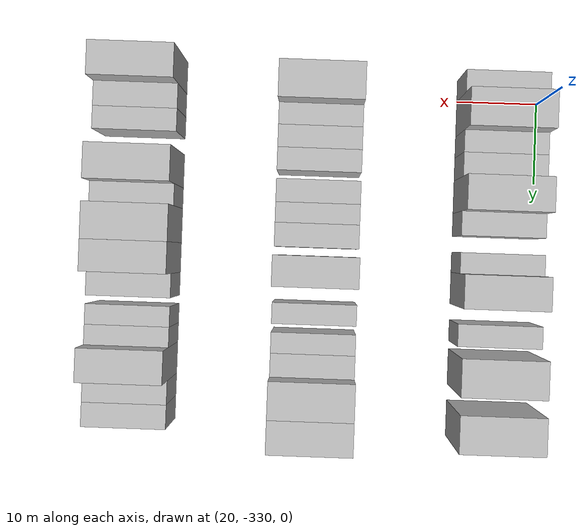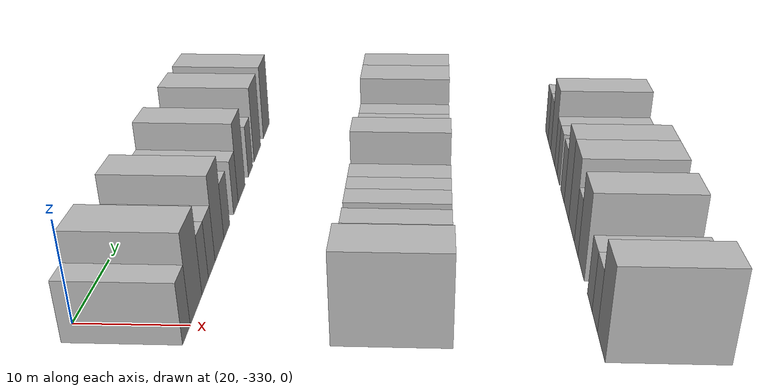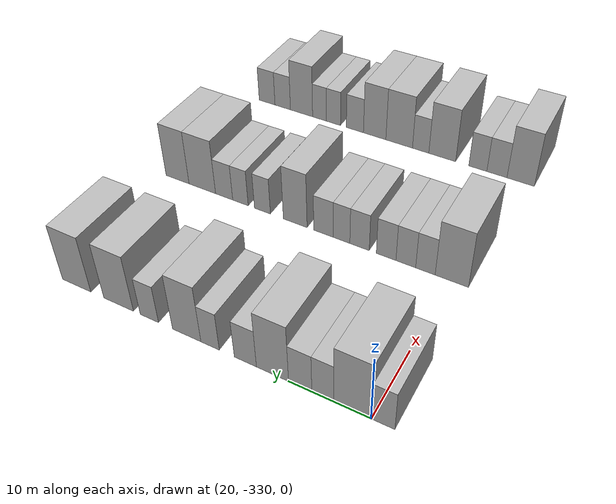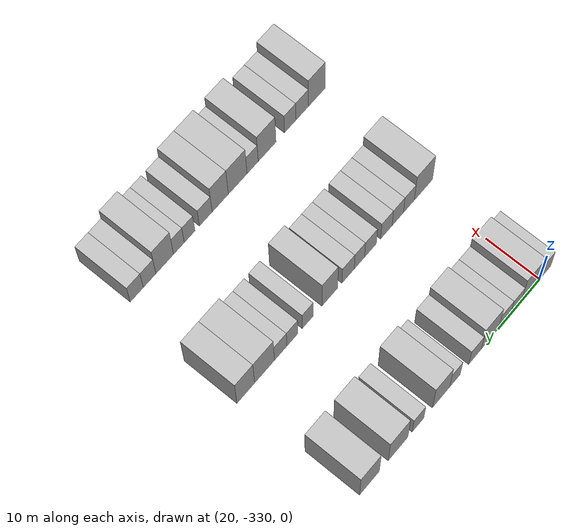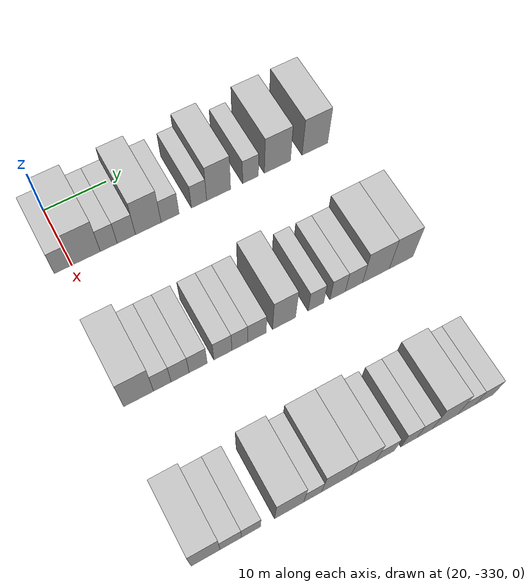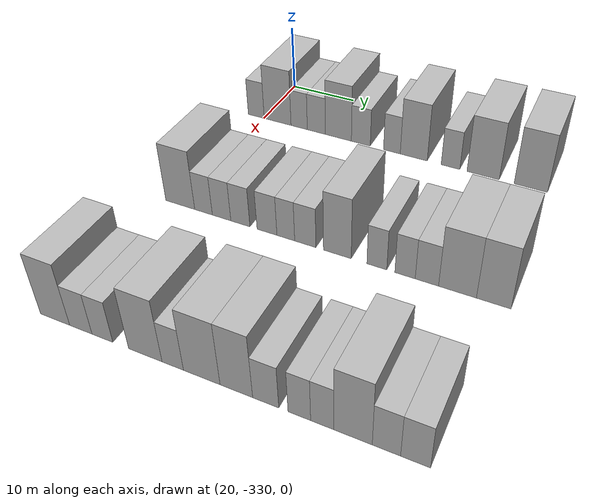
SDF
<sdf version="1.6">
 <world name="default">
  <model name="building_14">
   <static>1</static>
   <pose>25.0000 -331.3287 0 0.000000 0.000000 0.000000</pose>
   <link name="link">
    <pose>0 0 3.00 0 0 0</pose>
    <collision name="collision"><geometry><box><size>10.0000 2.6767 6.0000</size></box></geometry></collision>
    <visual name="visual">
     <cast_shadows>0</cast_shadows>
     <geometry><box><size>10.0000 2.6767 6.0000</size></box></geometry>
     <material>
      <script>
       <uri>model://HANNAS_wall/materials/scripts</uri>
       <uri>model://HANNAS_wall/materials/textures</uri>
       <name>vrc/HANNAS_wall</name>
      </script>
     </material>
    </visual>
   </link>
  </model>
  <model name="building_15">
   <static>1</static>
   <pose>25.0000 -327.7732 0 0.000000 0.000000 0.000000</pose>
   <link name="link">
    <pose>0 0 4.50 0 0 0</pose>
    <collision name="collision"><geometry><box><size>10.0000 4.4344 9.0000</size></box></geometry></collision>
    <visual name="visual">
     <cast_shadows>0</cast_shadows>
     <geometry><box><size>10.0000 4.4344 9.0000</size></box></geometry>
     <material>
      <script>
       <uri>model://HANNAS_wall/materials/scripts</uri>
       <uri>model://HANNAS_wall/materials/textures</uri>
       <name>vrc/HANNAS_wall</name>
      </script>
     </material>
    </visual>
   </link>
  </model>
  <model name="building_16">
   <static>1</static>
   <pose>25.0000 -324.2370 0 0.000000 0.000000 0.000000</pose>
   <link name="link">
    <pose>0 0 3.00 0 0 0</pose>
    <collision name="collision"><geometry><box><size>10.0000 2.6379 6.0000</size></box></geometry></collision>
    <visual name="visual">
     <cast_shadows>0</cast_shadows>
     <geometry><box><size>10.0000 2.6379 6.0000</size></box></geometry>
     <material>
      <script>
       <uri>model://HANNAS_wall/materials/scripts</uri>
       <uri>model://HANNAS_wall/materials/textures</uri>
       <name>vrc/HANNAS_wall</name>
      </script>
     </material>
    </visual>
   </link>
  </model>
  <model name="building_17">
   <static>1</static>
   <pose>25.0000 -321.4824 0 0.000000 0.000000 0.000000</pose>
   <link name="link">
    <pose>0 0 3.00 0 0 0</pose>
    <collision name="collision"><geometry><box><size>10.0000 2.8713 6.0000</size></box></geometry></collision>
    <visual name="visual">
     <cast_shadows>0</cast_shadows>
     <geometry><box><size>10.0000 2.8713 6.0000</size></box></geometry>
     <material>
      <script>
       <uri>model://HANNAS_wall/materials/scripts</uri>
       <uri>model://HANNAS_wall/materials/textures</uri>
       <name>vrc/HANNAS_wall</name>
      </script>
     </material>
    </visual>
   </link>
  </model>
  <model name="building_18">
   <static>1</static>
   <pose>25.0000 -318.0040 0 0.000000 0.000000 0.000000</pose>
   <link name="link">
    <pose>0 0 4.50 0 0 0</pose>
    <collision name="collision"><geometry><box><size>10.0000 4.0855 9.0000</size></box></geometry></collision>
    <visual name="visual">
     <cast_shadows>0</cast_shadows>
     <geometry><box><size>10.0000 4.0855 9.0000</size></box></geometry>
     <material>
      <script>
       <uri>model://HANNAS_wall/materials/scripts</uri>
       <uri>model://HANNAS_wall/materials/textures</uri>
       <name>vrc/HANNAS_wall</name>
      </script>
     </material>
    </visual>
   </link>
  </model>
  <model name="building_19">
   <static>1</static>
   <pose>25.0000 -314.5131 0 0.000000 0.000000 0.000000</pose>
   <link name="link">
    <pose>0 0 3.00 0 0 0</pose>
    <collision name="collision"><geometry><box><size>10.0000 2.8964 6.0000</size></box></geometry></collision>
    <visual name="visual">
     <cast_shadows>0</cast_shadows>
     <geometry><box><size>10.0000 2.8964 6.0000</size></box></geometry>
     <material>
      <script>
       <uri>model://HANNAS_wall/materials/scripts</uri>
       <uri>model://HANNAS_wall/materials/textures</uri>
       <name>vrc/HANNAS_wall</name>
      </script>
     </material>
    </visual>
   </link>
  </model>
  <model name="building_20">
   <static>1</static>
   <pose>25.0000 -309.8184 0 0.000000 0.000000 0.000000</pose>
   <link name="link">
    <pose>0 0 3.00 0 0 0</pose>
    <collision name="collision"><geometry><box><size>10.0000 2.4929 6.0000</size></box></geometry></collision>
    <visual name="visual">
     <cast_shadows>0</cast_shadows>
     <geometry><box><size>10.0000 2.4929 6.0000</size></box></geometry>
     <material>
      <script>
       <uri>model://HANNAS_wall/materials/scripts</uri>
       <uri>model://HANNAS_wall/materials/textures</uri>
       <name>vrc/HANNAS_wall</name>
      </script>
     </material>
    </visual>
   </link>
  </model>
  <model name="building_21">
   <static>1</static>
   <pose>25.0000 -306.5983 0 0.000000 0.000000 0.000000</pose>
   <link name="link">
    <pose>0 0 4.50 0 0 0</pose>
    <collision name="collision"><geometry><box><size>10.0000 3.9474 9.0000</size></box></geometry></collision>
    <visual name="visual">
     <cast_shadows>0</cast_shadows>
     <geometry><box><size>10.0000 3.9474 9.0000</size></box></geometry>
     <material>
      <script>
       <uri>model://HANNAS_wall/materials/scripts</uri>
       <uri>model://HANNAS_wall/materials/textures</uri>
       <name>vrc/HANNAS_wall</name>
      </script>
     </material>
    </visual>
   </link>
  </model>
  <model name="building_22">
   <static>1</static>
   <pose>25.0000 -301.3023 0 0.000000 0.000000 0.000000</pose>
   <link name="link">
    <pose>0 0 3.00 0 0 0</pose>
    <collision name="collision"><geometry><box><size>10.0000 2.6446 6.0000</size></box></geometry></collision>
    <visual name="visual">
     <cast_shadows>0</cast_shadows>
     <geometry><box><size>10.0000 2.6446 6.0000</size></box></geometry>
     <material>
      <script>
       <uri>model://HANNAS_wall/materials/scripts</uri>
       <uri>model://HANNAS_wall/materials/textures</uri>
       <name>vrc/HANNAS_wall</name>
      </script>
     </material>
    </visual>
   </link>
  </model>
  <model name="building_23">
   <static>1</static>
   <pose>25.0000 -296.7561 0 0.000000 0.000000 0.000000</pose>
   <link name="link">
    <pose>0 0 4.50 0 0 0</pose>
    <collision name="collision"><geometry><box><size>10.0000 4.4478 9.0000</size></box></geometry></collision>
    <visual name="visual">
     <cast_shadows>0</cast_shadows>
     <geometry><box><size>10.0000 4.4478 9.0000</size></box></geometry>
     <material>
      <script>
       <uri>model://HANNAS_wall/materials/scripts</uri>
       <uri>model://HANNAS_wall/materials/textures</uri>
       <name>vrc/HANNAS_wall</name>
      </script>
     </material>
    </visual>
   </link>
  </model>
  <model name="building_24">
   <static>1</static>
   <pose>25.0000 -290.3168 0 0.000000 0.000000 0.000000</pose>
   <link name="link">
    <pose>0 0 4.50 0 0 0</pose>
    <collision name="collision"><geometry><box><size>10.0000 4.4309 9.0000</size></box></geometry></collision>
    <visual name="visual">
     <cast_shadows>0</cast_shadows>
     <geometry><box><size>10.0000 4.4309 9.0000</size></box></geometry>
     <material>
      <script>
       <uri>model://HANNAS_wall/materials/scripts</uri>
       <uri>model://HANNAS_wall/materials/textures</uri>
       <name>vrc/HANNAS_wall</name>
      </script>
     </material>
    </visual>
   </link>
  </model>
  <model name="building_203">
   <static>1</static>
   <pose>47.0000 -330.2119 0 0.000000 0.000000 0.000000</pose>
   <link name="link">
    <pose>0 0 4.50 0 0 0</pose>
    <collision name="collision"><geometry><box><size>10.0000 4.3527 9.0000</size></box></geometry></collision>
    <visual name="visual">
     <cast_shadows>0</cast_shadows>
     <geometry><box><size>10.0000 4.3527 9.0000</size></box></geometry>
     <material>
      <script>
       <uri>model://HANNAS_wall/materials/scripts</uri>
       <uri>model://HANNAS_wall/materials/textures</uri>
       <name>vrc/HANNAS_wall</name>
      </script>
     </material>
    </visual>
   </link>
  </model>
  <model name="building_204">
   <static>1</static>
   <pose>47.0000 -326.7335 0 0.000000 0.000000 0.000000</pose>
   <link name="link">
    <pose>0 0 3.00 0 0 0</pose>
    <collision name="collision"><geometry><box><size>10.0000 2.6040 6.0000</size></box></geometry></collision>
    <visual name="visual">
     <cast_shadows>0</cast_shadows>
     <geometry><box><size>10.0000 2.6040 6.0000</size></box></geometry>
     <material>
      <script>
       <uri>model://HANNAS_wall/materials/scripts</uri>
       <uri>model://HANNAS_wall/materials/textures</uri>
       <name>vrc/HANNAS_wall</name>
      </script>
     </material>
    </visual>
   </link>
  </model>
  <model name="building_205">
   <static>1</static>
   <pose>47.0000 -324.0924 0 0.000000 0.000000 0.000000</pose>
   <link name="link">
    <pose>0 0 3.00 0 0 0</pose>
    <collision name="collision"><geometry><box><size>10.0000 2.6783 6.0000</size></box></geometry></collision>
    <visual name="visual">
     <cast_shadows>0</cast_shadows>
     <geometry><box><size>10.0000 2.6783 6.0000</size></box></geometry>
     <material>
      <script>
       <uri>model://HANNAS_wall/materials/scripts</uri>
       <uri>model://HANNAS_wall/materials/textures</uri>
       <name>vrc/HANNAS_wall</name>
      </script>
     </material>
    </visual>
   </link>
  </model>
  <model name="building_206">
   <static>1</static>
   <pose>47.0000 -321.3945 0 0.000000 0.000000 0.000000</pose>
   <link name="link">
    <pose>0 0 3.00 0 0 0</pose>
    <collision name="collision"><geometry><box><size>10.0000 2.7174 6.0000</size></box></geometry></collision>
    <visual name="visual">
     <cast_shadows>0</cast_shadows>
     <geometry><box><size>10.0000 2.7174 6.0000</size></box></geometry>
     <material>
      <script>
       <uri>model://HANNAS_wall/materials/scripts</uri>
       <uri>model://HANNAS_wall/materials/textures</uri>
       <name>vrc/HANNAS_wall</name>
      </script>
     </material>
    </visual>
   </link>
  </model>
  <model name="building_207">
   <static>1</static>
   <pose>47.0000 -317.6592 0 0.000000 0.000000 0.000000</pose>
   <link name="link">
    <pose>0 0 3.00 0 0 0</pose>
    <collision name="collision"><geometry><box><size>10.0000 2.7532 6.0000</size></box></geometry></collision>
    <visual name="visual">
     <cast_shadows>0</cast_shadows>
     <geometry><box><size>10.0000 2.7532 6.0000</size></box></geometry>
     <material>
      <script>
       <uri>model://HANNAS_wall/materials/scripts</uri>
       <uri>model://HANNAS_wall/materials/textures</uri>
       <name>vrc/HANNAS_wall</name>
      </script>
     </material>
    </visual>
   </link>
  </model>
  <model name="building_208">
   <static>1</static>
   <pose>47.0000 -315.0698 0 0.000000 0.000000 0.000000</pose>
   <link name="link">
    <pose>0 0 3.00 0 0 0</pose>
    <collision name="collision"><geometry><box><size>10.0000 2.4256 6.0000</size></box></geometry></collision>
    <visual name="visual">
     <cast_shadows>0</cast_shadows>
     <geometry><box><size>10.0000 2.4256 6.0000</size></box></geometry>
     <material>
      <script>
       <uri>model://HANNAS_wall/materials/scripts</uri>
       <uri>model://HANNAS_wall/materials/textures</uri>
       <name>vrc/HANNAS_wall</name>
      </script>
     </material>
    </visual>
   </link>
  </model>
  <model name="building_209">
   <static>1</static>
   <pose>47.0000 -312.4344 0 0.000000 0.000000 0.000000</pose>
   <link name="link">
    <pose>0 0 3.00 0 0 0</pose>
    <collision name="collision"><geometry><box><size>10.0000 2.8453 6.0000</size></box></geometry></collision>
    <visual name="visual">
     <cast_shadows>0</cast_shadows>
     <geometry><box><size>10.0000 2.8453 6.0000</size></box></geometry>
     <material>
      <script>
       <uri>model://HANNAS_wall/materials/scripts</uri>
       <uri>model://HANNAS_wall/materials/textures</uri>
       <name>vrc/HANNAS_wall</name>
      </script>
     </material>
    </visual>
   </link>
  </model>
  <model name="building_210">
   <static>1</static>
   <pose>47.0000 -308.2078 0 0.000000 0.000000 0.000000</pose>
   <link name="link">
    <pose>0 0 4.50 0 0 0</pose>
    <collision name="collision"><geometry><box><size>10.0000 3.6080 9.0000</size></box></geometry></collision>
    <visual name="visual">
     <cast_shadows>0</cast_shadows>
     <geometry><box><size>10.0000 3.6080 9.0000</size></box></geometry>
     <material>
      <script>
       <uri>model://HANNAS_wall/materials/scripts</uri>
       <uri>model://HANNAS_wall/materials/textures</uri>
       <name>vrc/HANNAS_wall</name>
      </script>
     </material>
    </visual>
   </link>
  </model>
  <model name="building_211">
   <static>1</static>
   <pose>47.0000 -303.1569 0 0.000000 0.000000 0.000000</pose>
   <link name="link">
    <pose>0 0 3.00 0 0 0</pose>
    <collision name="collision"><geometry><box><size>10.0000 2.4937 6.0000</size></box></geometry></collision>
    <visual name="visual">
     <cast_shadows>0</cast_shadows>
     <geometry><box><size>10.0000 2.4937 6.0000</size></box></geometry>
     <material>
      <script>
       <uri>model://HANNAS_wall/materials/scripts</uri>
       <uri>model://HANNAS_wall/materials/textures</uri>
       <name>vrc/HANNAS_wall</name>
      </script>
     </material>
    </visual>
   </link>
  </model>
  <model name="building_212">
   <static>1</static>
   <pose>47.0000 -299.6671 0 0.000000 0.000000 0.000000</pose>
   <link name="link">
    <pose>0 0 3.00 0 0 0</pose>
    <collision name="collision"><geometry><box><size>10.0000 2.4860 6.0000</size></box></geometry></collision>
    <visual name="visual">
     <cast_shadows>0</cast_shadows>
     <geometry><box><size>10.0000 2.4860 6.0000</size></box></geometry>
     <material>
      <script>
       <uri>model://HANNAS_wall/materials/scripts</uri>
       <uri>model://HANNAS_wall/materials/textures</uri>
       <name>vrc/HANNAS_wall</name>
      </script>
     </material>
    </visual>
   </link>
  </model>
  <model name="building_213">
   <static>1</static>
   <pose>47.0000 -297.0243 0 0.000000 0.000000 0.000000</pose>
   <link name="link">
    <pose>0 0 3.00 0 0 0</pose>
    <collision name="collision"><geometry><box><size>10.0000 2.7996 6.0000</size></box></geometry></collision>
    <visual name="visual">
     <cast_shadows>0</cast_shadows>
     <geometry><box><size>10.0000 2.7996 6.0000</size></box></geometry>
     <material>
      <script>
       <uri>model://HANNAS_wall/materials/scripts</uri>
       <uri>model://HANNAS_wall/materials/textures</uri>
       <name>vrc/HANNAS_wall</name>
      </script>
     </material>
    </visual>
   </link>
  </model>
  <model name="building_214">
   <static>1</static>
   <pose>47.0000 -293.4089 0 0.000000 0.000000 0.000000</pose>
   <link name="link">
    <pose>0 0 4.50 0 0 0</pose>
    <collision name="collision"><geometry><box><size>10.0000 4.4312 9.0000</size></box></geometry></collision>
    <visual name="visual">
     <cast_shadows>0</cast_shadows>
     <geometry><box><size>10.0000 4.4312 9.0000</size></box></geometry>
     <material>
      <script>
       <uri>model://HANNAS_wall/materials/scripts</uri>
       <uri>model://HANNAS_wall/materials/textures</uri>
       <name>vrc/HANNAS_wall</name>
      </script>
     </material>
    </visual>
   </link>
  </model>
  <model name="building_215">
   <static>1</static>
   <pose>47.0000 -289.2270 0 0.000000 0.000000 0.000000</pose>
   <link name="link">
    <pose>0 0 4.50 0 0 0</pose>
    <collision name="collision"><geometry><box><size>10.0000 3.9327 9.0000</size></box></geometry></collision>
    <visual name="visual">
     <cast_shadows>0</cast_shadows>
     <geometry><box><size>10.0000 3.9327 9.0000</size></box></geometry>
     <material>
      <script>
       <uri>model://HANNAS_wall/materials/scripts</uri>
       <uri>model://HANNAS_wall/materials/textures</uri>
       <name>vrc/HANNAS_wall</name>
      </script>
     </material>
    </visual>
   </link>
  </model>
  <model name="building_395">
   <static>1</static>
   <pose>69.0000 -331.7882 0 0.000000 0.000000 0.000000</pose>
   <link name="link">
    <pose>0 0 4.50 0 0 0</pose>
    <collision name="collision"><geometry><box><size>10.0000 3.9653 9.0000</size></box></geometry></collision>
    <visual name="visual">
     <cast_shadows>0</cast_shadows>
     <geometry><box><size>10.0000 3.9653 9.0000</size></box></geometry>
     <material>
      <script>
       <uri>model://HANNAS_wall/materials/scripts</uri>
       <uri>model://HANNAS_wall/materials/textures</uri>
       <name>vrc/HANNAS_wall</name>
      </script>
     </material>
    </visual>
   </link>
  </model>
  <model name="building_396">
   <static>1</static>
   <pose>69.0000 -328.3248 0 0.000000 0.000000 0.000000</pose>
   <link name="link">
    <pose>0 0 3.00 0 0 0</pose>
    <collision name="collision"><geometry><box><size>10.0000 2.9615 6.0000</size></box></geometry></collision>
    <visual name="visual">
     <cast_shadows>0</cast_shadows>
     <geometry><box><size>10.0000 2.9615 6.0000</size></box></geometry>
     <material>
      <script>
       <uri>model://HANNAS_wall/materials/scripts</uri>
       <uri>model://HANNAS_wall/materials/textures</uri>
       <name>vrc/HANNAS_wall</name>
      </script>
     </material>
    </visual>
   </link>
  </model>
  <model name="building_397">
   <static>1</static>
   <pose>69.0000 -325.4898 0 0.000000 0.000000 0.000000</pose>
   <link name="link">
    <pose>0 0 3.00 0 0 0</pose>
    <collision name="collision"><geometry><box><size>10.0000 2.7085 6.0000</size></box></geometry></collision>
    <visual name="visual">
     <cast_shadows>0</cast_shadows>
     <geometry><box><size>10.0000 2.7085 6.0000</size></box></geometry>
     <material>
      <script>
       <uri>model://HANNAS_wall/materials/scripts</uri>
       <uri>model://HANNAS_wall/materials/textures</uri>
       <name>vrc/HANNAS_wall</name>
      </script>
     </material>
    </visual>
   </link>
  </model>
  <model name="building_398">
   <static>1</static>
   <pose>69.0000 -320.0526 0 0.000000 0.000000 0.000000</pose>
   <link name="link">
    <pose>0 0 4.50 0 0 0</pose>
    <collision name="collision"><geometry><box><size>10.0000 4.1660 9.0000</size></box></geometry></collision>
    <visual name="visual">
     <cast_shadows>0</cast_shadows>
     <geometry><box><size>10.0000 4.1660 9.0000</size></box></geometry>
     <material>
      <script>
       <uri>model://HANNAS_wall/materials/scripts</uri>
       <uri>model://HANNAS_wall/materials/textures</uri>
       <name>vrc/HANNAS_wall</name>
      </script>
     </material>
    </visual>
   </link>
  </model>
  <model name="building_399">
   <static>1</static>
   <pose>69.0000 -316.6746 0 0.000000 0.000000 0.000000</pose>
   <link name="link">
    <pose>0 0 3.00 0 0 0</pose>
    <collision name="collision"><geometry><box><size>10.0000 2.5899 6.0000</size></box></geometry></collision>
    <visual name="visual">
     <cast_shadows>0</cast_shadows>
     <geometry><box><size>10.0000 2.5899 6.0000</size></box></geometry>
     <material>
      <script>
       <uri>model://HANNAS_wall/materials/scripts</uri>
       <uri>model://HANNAS_wall/materials/textures</uri>
       <name>vrc/HANNAS_wall</name>
      </script>
     </material>
    </visual>
   </link>
  </model>
  <model name="building_400">
   <static>1</static>
   <pose>69.0000 -313.2295 0 0.000000 0.000000 0.000000</pose>
   <link name="link">
    <pose>0 0 4.50 0 0 0</pose>
    <collision name="collision"><geometry><box><size>10.0000 4.3005 9.0000</size></box></geometry></collision>
    <visual name="visual">
     <cast_shadows>0</cast_shadows>
     <geometry><box><size>10.0000 4.3005 9.0000</size></box></geometry>
     <material>
      <script>
       <uri>model://HANNAS_wall/materials/scripts</uri>
       <uri>model://HANNAS_wall/materials/textures</uri>
       <name>vrc/HANNAS_wall</name>
      </script>
     </material>
    </visual>
   </link>
  </model>
  <model name="building_401">
   <static>1</static>
   <pose>69.0000 -309.2231 0 0.000000 0.000000 0.000000</pose>
   <link name="link">
    <pose>0 0 4.50 0 0 0</pose>
    <collision name="collision"><geometry><box><size>10.0000 3.7122 9.0000</size></box></geometry></collision>
    <visual name="visual">
     <cast_shadows>0</cast_shadows>
     <geometry><box><size>10.0000 3.7122 9.0000</size></box></geometry>
     <material>
      <script>
       <uri>model://HANNAS_wall/materials/scripts</uri>
       <uri>model://HANNAS_wall/materials/textures</uri>
       <name>vrc/HANNAS_wall</name>
      </script>
     </material>
    </visual>
   </link>
  </model>
  <model name="building_402">
   <static>1</static>
   <pose>69.0000 -305.9225 0 0.000000 0.000000 0.000000</pose>
   <link name="link">
    <pose>0 0 3.00 0 0 0</pose>
    <collision name="collision"><geometry><box><size>10.0000 2.8890 6.0000</size></box></geometry></collision>
    <visual name="visual">
     <cast_shadows>0</cast_shadows>
     <geometry><box><size>10.0000 2.8890 6.0000</size></box></geometry>
     <material>
      <script>
       <uri>model://HANNAS_wall/materials/scripts</uri>
       <uri>model://HANNAS_wall/materials/textures</uri>
       <name>vrc/HANNAS_wall</name>
      </script>
     </material>
    </visual>
   </link>
  </model>
  <model name="building_403">
   <static>1</static>
   <pose>69.0000 -302.2654 0 0.000000 0.000000 0.000000</pose>
   <link name="link">
    <pose>0 0 3.00 0 0 0</pose>
    <collision name="collision"><geometry><box><size>10.0000 2.4252 6.0000</size></box></geometry></collision>
    <visual name="visual">
     <cast_shadows>0</cast_shadows>
     <geometry><box><size>10.0000 2.4252 6.0000</size></box></geometry>
     <material>
      <script>
       <uri>model://HANNAS_wall/materials/scripts</uri>
       <uri>model://HANNAS_wall/materials/textures</uri>
       <name>vrc/HANNAS_wall</name>
      </script>
     </material>
    </visual>
   </link>
  </model>
  <model name="building_404">
   <static>1</static>
   <pose>69.0000 -299.8462 0 0.000000 0.000000 0.000000</pose>
   <link name="link">
    <pose>0 0 3.00 0 0 0</pose>
    <collision name="collision"><geometry><box><size>10.0000 2.4133 6.0000</size></box></geometry></collision>
    <visual name="visual">
     <cast_shadows>0</cast_shadows>
     <geometry><box><size>10.0000 2.4133 6.0000</size></box></geometry>
     <material>
      <script>
       <uri>model://HANNAS_wall/materials/scripts</uri>
       <uri>model://HANNAS_wall/materials/textures</uri>
       <name>vrc/HANNAS_wall</name>
      </script>
     </material>
    </visual>
   </link>
  </model>
  <model name="building_405">
   <static>1</static>
   <pose>69.0000 -296.6703 0 0.000000 0.000000 0.000000</pose>
   <link name="link">
    <pose>0 0 4.50 0 0 0</pose>
    <collision name="collision"><geometry><box><size>10.0000 3.9385 9.0000</size></box></geometry></collision>
    <visual name="visual">
     <cast_shadows>0</cast_shadows>
     <geometry><box><size>10.0000 3.9385 9.0000</size></box></geometry>
     <material>
      <script>
       <uri>model://HANNAS_wall/materials/scripts</uri>
       <uri>model://HANNAS_wall/materials/textures</uri>
       <name>vrc/HANNAS_wall</name>
      </script>
     </material>
    </visual>
   </link>
  </model>
  <model name="building_406">
   <static>1</static>
   <pose>69.0000 -293.2971 0 0.000000 0.000000 0.000000</pose>
   <link name="link">
    <pose>0 0 3.00 0 0 0</pose>
    <collision name="collision"><geometry><box><size>10.0000 2.8079 6.0000</size></box></geometry></collision>
    <visual name="visual">
     <cast_shadows>0</cast_shadows>
     <geometry><box><size>10.0000 2.8079 6.0000</size></box></geometry>
     <material>
      <script>
       <uri>model://HANNAS_wall/materials/scripts</uri>
       <uri>model://HANNAS_wall/materials/textures</uri>
       <name>vrc/HANNAS_wall</name>
      </script>
     </material>
    </visual>
   </link>
  </model>
  <model name="building_407">
   <static>1</static>
   <pose>69.0000 -290.4461 0 0.000000 0.000000 0.000000</pose>
   <link name="link">
    <pose>0 0 3.00 0 0 0</pose>
    <collision name="collision"><geometry><box><size>10.0000 2.8942 6.0000</size></box></geometry></collision>
    <visual name="visual">
     <cast_shadows>0</cast_shadows>
     <geometry><box><size>10.0000 2.8942 6.0000</size></box></geometry>
     <material>
      <script>
       <uri>model://HANNAS_wall/materials/scripts</uri>
       <uri>model://HANNAS_wall/materials/textures</uri>
       <name>vrc/HANNAS_wall</name>
      </script>
     </material>
    </visual>
   </link>
  </model>
 </world>
</sdf>
